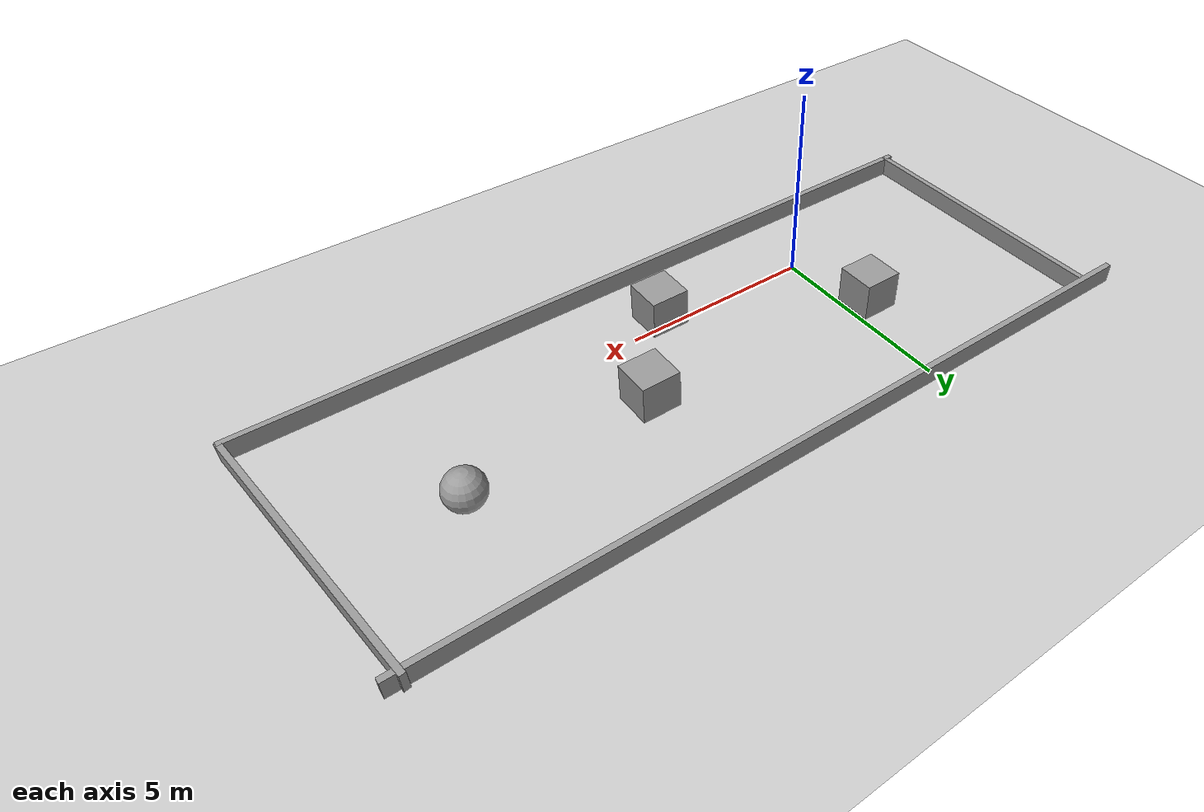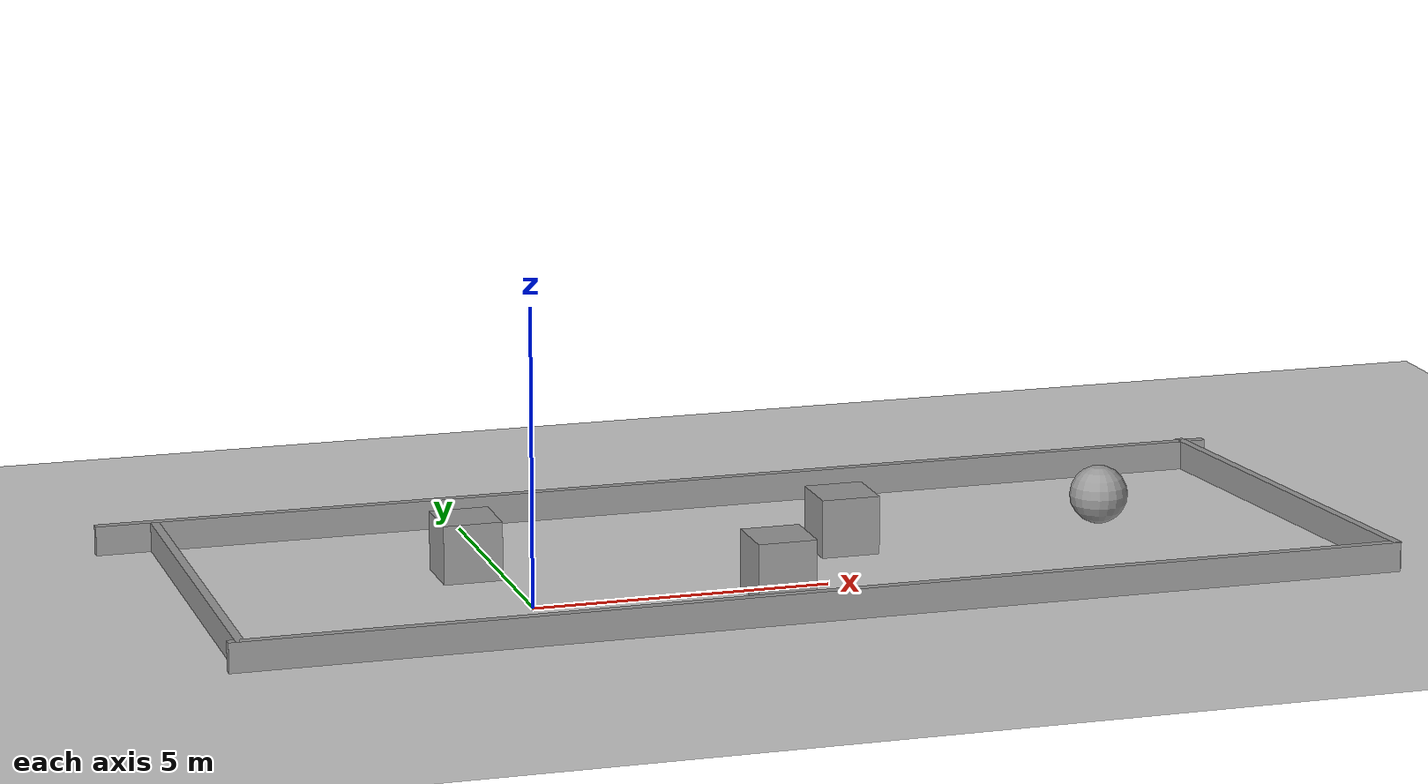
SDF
<sdf version="1.6">
 <world name="default">
  <scene><ambient>0.4 0.4 0.4 1</ambient><background>0.7 0.7 0.7 1</background><shadows>1</shadows></scene>
  <light name="sun" type="directional">
   <pose>0 0 10 0 -0 0</pose>
   <diffuse>0.8 0.8 0.8 1</diffuse>
   <specular>0.2 0.2 0.2 1</specular>
   <attenuation>
    <range>1000</range>
    <constant>0.9</constant>
    <linear>0.01</linear>
    <quadratic>0.001</quadratic>
   </attenuation>
   <direction>-0.5 0.1 -0.9</direction>
  </light>
  <model name="ground_plane">
   <static>1</static>
   <link name="link">
    <collision name="collision">
     <geometry><plane><normal>0 0 1</normal><size>100 100</size></plane></geometry>
     <surface>
      <contact><collide_bitmask>65535</collide_bitmask></contact>
      <friction><ode><mu>100</mu><mu2>50</mu2></ode></friction>
     </surface>
    </collision>
    <visual name="visual">
     <cast_shadows>0</cast_shadows>
     <geometry><plane><normal>0 0 1</normal><size>100 100</size></plane></geometry>
     <material>
      <script><uri>file://media/materials/scripts/gazebo.material</uri><name>Gazebo/Grey</name></script>
     </material>
    </visual>
   </link>
  </model>
  <physics name="default_physics" default="0" type="ode">
   <real_time_update_rate>1000</real_time_update_rate>
   <max_step_size>0.001</max_step_size>
   <real_time_factor>1</real_time_factor>
   <ode>
    <solver>
     <type>quick</type>
     <iters>150</iters>
     <precon_iters>0</precon_iters>
     <sor>1.4</sor>
     <use_dynamic_moi_rescaling>1</use_dynamic_moi_rescaling>
    </solver>
    <constraints>
     <cfm>1e-05</cfm>
     <erp>0.2</erp>
     <contact_max_correcting_vel>2000</contact_max_correcting_vel>
     <contact_surface_layer>0.01</contact_surface_layer>
    </constraints>
   </ode>
  </physics>
  <gravity>0 0 -9.8</gravity>
  <magnetic_field>6e-06 2.3e-05 -4.2e-05</magnetic_field>
  <atmosphere type="adiabatic"/>
  <spherical_coordinates>
   <surface_model>EARTH_WGS84</surface_model>
   <latitude_deg>0</latitude_deg>
   <longitude_deg>0</longitude_deg>
   <elevation>0</elevation>
   <heading_deg>0</heading_deg>
  </spherical_coordinates>
  <model name="small_wall_1">
   <pose>-5.23168 1.53576 0 0 0 -1.57364</pose>
   <link name="Wall_1">
    <collision name="Wall_1_Collision">
     <geometry><box><size>7.25 0.15 0.5</size></box></geometry>
     <pose>0 0 0.25 0 -0 0</pose>
    </collision>
    <visual name="Wall_1_Visual">
     <pose>0 0 0.25 0 -0 0</pose>
     <geometry><box><size>7.25 0.15 0.5</size></box></geometry>
     <material>
      <script><uri>file://media/materials/scripts/gazebo.material</uri><name>Gazebo/Grey</name></script>
      <ambient>1 1 1 1</ambient>
     </material>
     <meta><layer>0</layer></meta>
    </visual>
   </link>
   <static>1</static>
  </model>
  <model name="small_wall">
   <link name="Wall_1">
    <pose>6.26337 -0.059495 0 0 -0 0</pose>
    <inertial>
     <inertia><ixx>0</ixx><ixy>0</ixy><ixz>0</ixz><iyy>0</iyy><iyz>0</iyz><izz>0</izz></inertia>
     <mass>0</mass>
    </inertial>
    <visual name="Wall_1_Visual">
     <pose>0 0 0.25 0 -0 0</pose>
     <geometry><box><size>19.7333 0.15 0.5</size></box></geometry>
     <material>
      <script><uri>file://media/materials/scripts/gazebo.material</uri><name>Gazebo/Grey</name></script>
      <ambient>1 1 1 1</ambient>
      <shader type="pixel"/>
     </material>
     <meta><layer>0</layer></meta>
    </visual>
    <collision name="Wall_1_Collision">
     <pose>0 0 0.25 0 -0 0</pose>
     <geometry><box><size>19.7333 0.15 0.5</size></box></geometry>
     <surface>
      <friction>
       <ode><mu>1</mu><mu2>1</mu2><fdir1>0 0 0</fdir1><slip1>0</slip1><slip2>0</slip2></ode>
       <torsional>
        <coefficient>1</coefficient>
        <patch_radius>0</patch_radius>
        <surface_radius>0</surface_radius>
        <use_patch_radius>1</use_patch_radius>
        <ode><slip>0</slip></ode>
       </torsional>
      </friction>
      <bounce><restitution_coefficient>0</restitution_coefficient><threshold>1e+06</threshold></bounce>
      <contact>
       <collide_without_contact>0</collide_without_contact>
       <collide_without_contact_bitmask>1</collide_without_contact_bitmask>
       <collide_bitmask>1</collide_bitmask>
       <ode>
        <soft_cfm>0</soft_cfm>
        <soft_erp>0.2</soft_erp>
        <kp>1e+13</kp>
        <kd>1</kd>
        <max_vel>0.01</max_vel>
        <min_depth>0</min_depth>
       </ode>
       <bullet>
        <split_impulse>1</split_impulse>
        <split_impulse_penetration_threshold>-0.01</split_impulse_penetration_threshold>
        <soft_cfm>0</soft_cfm>
        <soft_erp>0.2</soft_erp>
        <kp>1e+13</kp>
        <kd>1</kd>
       </bullet>
      </contact>
     </surface>
    </collision>
   </link>
   <static>1</static>
   <pose>-1.8366 -1.95798 0 0 -0 0</pose>
  </model>
  <model name="unit_box">
   <pose>-0.57049 2.22685 0.5 0 -0 0</pose>
   <link name="link">
    <inertial>
     <mass>1</mass>
     <inertia>
      <ixx>0.166667</ixx>
      <ixy>0</ixy>
      <ixz>0</ixz>
      <iyy>0.166667</iyy>
      <iyz>0</iyz>
      <izz>0.166667</izz>
     </inertia>
    </inertial>
    <collision name="collision"><geometry><box><size>1 1 1</size></box></geometry></collision>
    <visual name="visual">
     <geometry><box><size>1 1 1</size></box></geometry>
     <material>
      <script><name>Gazebo/Grey</name><uri>file://media/materials/scripts/gazebo.material</uri></script>
     </material>
    </visual>
   </link>
  </model>
  <model name="unit_box_0">
   <pose>4.05209 -0.324062 0.5 0 -0 0</pose>
   <link name="link">
    <inertial>
     <mass>1</mass>
     <inertia>
      <ixx>0.166667</ixx>
      <ixy>0</ixy>
      <ixz>0</ixz>
      <iyy>0.166667</iyy>
      <iyz>0</iyz>
      <izz>0.166667</izz>
     </inertia>
    </inertial>
    <collision name="collision"><geometry><box><size>1 1 1</size></box></geometry></collision>
    <visual name="visual">
     <geometry><box><size>1 1 1</size></box></geometry>
     <material>
      <script><name>Gazebo/Grey</name><uri>file://media/materials/scripts/gazebo.material</uri></script>
     </material>
    </visual>
   </link>
  </model>
  <model name="unit_box_1">
   <pose>5.86933 1.94553 0.5 0 -0 0</pose>
   <link name="link">
    <inertial>
     <mass>1</mass>
     <inertia>
      <ixx>0.166667</ixx>
      <ixy>0</ixy>
      <ixz>0</ixz>
      <iyy>0.166667</iyy>
      <iyz>0</iyz>
      <izz>0.166667</izz>
     </inertia>
    </inertial>
    <collision name="collision"><geometry><box><size>1 1 1</size></box></geometry></collision>
    <visual name="visual">
     <geometry><box><size>1 1 1</size></box></geometry>
     <material>
      <script><name>Gazebo/Grey</name><uri>file://media/materials/scripts/gazebo.material</uri></script>
     </material>
    </visual>
   </link>
  </model>
  <model name="unit_sphere">
   <pose>10.5887 2.23646 0.5 0 -0 0</pose>
   <link name="link">
    <inertial>
     <mass>1</mass>
     <inertia><ixx>0.1</ixx><ixy>0</ixy><ixz>0</ixz><iyy>0.1</iyy><iyz>0</iyz><izz>0.1</izz></inertia>
    </inertial>
    <collision name="collision"><geometry><sphere><radius>0.5</radius></sphere></geometry></collision>
    <visual name="visual">
     <geometry><sphere><radius>0.5</radius></sphere></geometry>
     <material>
      <script><name>Gazebo/Grey</name><uri>file://media/materials/scripts/gazebo.material</uri></script>
     </material>
    </visual>
   </link>
  </model>
  <model name="small_wall_2">
   <link name="Wall_1">
    <pose>2.71784 -4.61471 0 0 -0 0</pose>
    <inertial>
     <inertia><ixx>0</ixx><ixy>0</ixy><ixz>0</ixz><iyy>0</iyy><iyz>0</iyz><izz>0</izz></inertia>
     <mass>0</mass>
    </inertial>
    <visual name="Wall_1_Visual">
     <pose>0 0 0.25 0 -0 0</pose>
     <geometry><box><size>7.4861 0.15 0.5</size></box></geometry>
     <material>
      <script><uri>file://media/materials/scripts/gazebo.material</uri><name>Gazebo/Grey</name></script>
      <ambient>1 1 1 1</ambient>
      <shader type="pixel"/>
     </material>
     <meta><layer>0</layer></meta>
    </visual>
    <collision name="Wall_1_Collision">
     <pose>0 0 0.25 0 -0 0</pose>
     <geometry><box><size>7.4861 0.15 0.5</size></box></geometry>
     <surface>
      <friction>
       <ode><mu>1</mu><mu2>1</mu2><fdir1>0 0 0</fdir1><slip1>0</slip1><slip2>0</slip2></ode>
       <torsional>
        <coefficient>1</coefficient>
        <patch_radius>0</patch_radius>
        <surface_radius>0</surface_radius>
        <use_patch_radius>1</use_patch_radius>
        <ode><slip>0</slip></ode>
       </torsional>
      </friction>
      <bounce><restitution_coefficient>0</restitution_coefficient><threshold>1e+06</threshold></bounce>
      <contact>
       <collide_without_contact>0</collide_without_contact>
       <collide_without_contact_bitmask>1</collide_without_contact_bitmask>
       <collide_bitmask>1</collide_bitmask>
       <ode>
        <soft_cfm>0</soft_cfm>
        <soft_erp>0.2</soft_erp>
        <kp>1e+13</kp>
        <kd>1</kd>
        <max_vel>0.01</max_vel>
        <min_depth>0</min_depth>
       </ode>
       <bullet>
        <split_impulse>1</split_impulse>
        <split_impulse_penetration_threshold>-0.01</split_impulse_penetration_threshold>
        <soft_cfm>0</soft_cfm>
        <soft_erp>0.2</soft_erp>
        <kp>1e+13</kp>
        <kd>1</kd>
       </bullet>
      </contact>
     </surface>
    </collision>
   </link>
   <static>1</static>
   <pose>9.54414 -1.62774 0 0 -0 1.69906</pose>
  </model>
  <model name="small_wall_0">
   <link name="Wall_1">
    <pose>-1.39145 0.245331 0 0 -0 0</pose>
    <inertial>
     <inertia><ixx>0</ixx><ixy>0</ixy><ixz>0</ixz><iyy>0</iyy><iyz>0</iyz><izz>0</izz></inertia>
     <mass>0</mass>
    </inertial>
    <visual name="Wall_1_Visual">
     <pose>0 0 0.25 0 -0 0</pose>
     <geometry><box><size>19.9248 0.15 0.5</size></box></geometry>
     <material>
      <script><uri>file://media/materials/scripts/gazebo.material</uri><name>Gazebo/Grey</name></script>
      <ambient>1 1 1 1</ambient>
      <shader type="pixel"/>
     </material>
     <meta><layer>0</layer></meta>
    </visual>
    <collision name="Wall_1_Collision">
     <pose>0 0 0.25 0 -0 0</pose>
     <geometry><box><size>19.9248 0.15 0.5</size></box></geometry>
     <surface>
      <friction>
       <ode><mu>1</mu><mu2>1</mu2><fdir1>0 0 0</fdir1><slip1>0</slip1><slip2>0</slip2></ode>
       <torsional>
        <coefficient>1</coefficient>
        <patch_radius>0</patch_radius>
        <surface_radius>0</surface_radius>
        <use_patch_radius>1</use_patch_radius>
        <ode><slip>0</slip></ode>
       </torsional>
      </friction>
      <bounce><restitution_coefficient>0</restitution_coefficient><threshold>1e+06</threshold></bounce>
      <contact>
       <collide_without_contact>0</collide_without_contact>
       <collide_without_contact_bitmask>1</collide_without_contact_bitmask>
       <collide_bitmask>1</collide_bitmask>
       <ode>
        <soft_cfm>0</soft_cfm>
        <soft_erp>0.2</soft_erp>
        <kp>1e+13</kp>
        <kd>1</kd>
        <max_vel>0.01</max_vel>
        <min_depth>0</min_depth>
       </ode>
       <bullet>
        <split_impulse>1</split_impulse>
        <split_impulse_penetration_threshold>-0.01</split_impulse_penetration_threshold>
        <soft_cfm>0</soft_cfm>
        <soft_erp>0.2</soft_erp>
        <kp>1e+13</kp>
        <kd>1</kd>
       </bullet>
      </contact>
     </surface>
    </collision>
   </link>
   <static>1</static>
   <pose>5.13062 4.97542 0 0 -0 0</pose>
  </model>
 </world>
</sdf>
